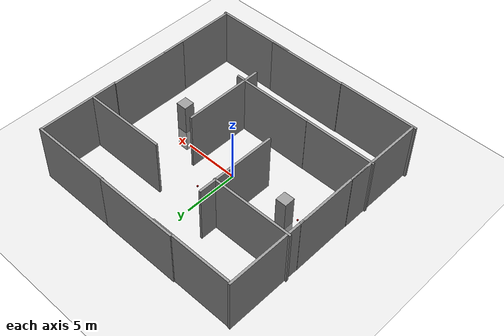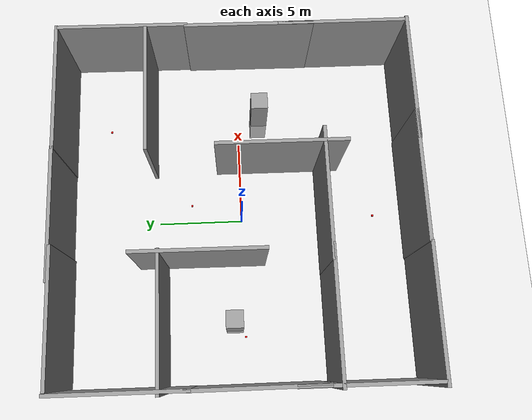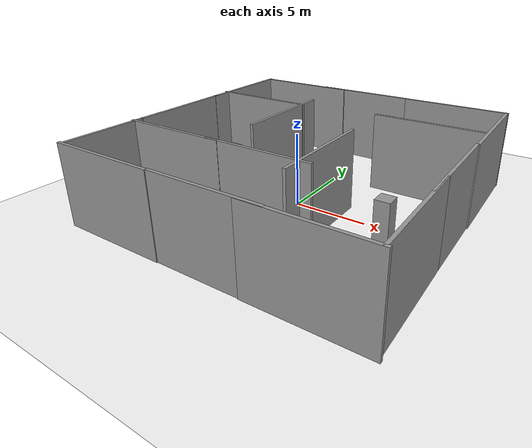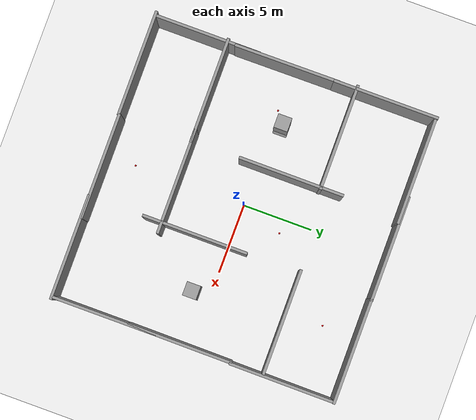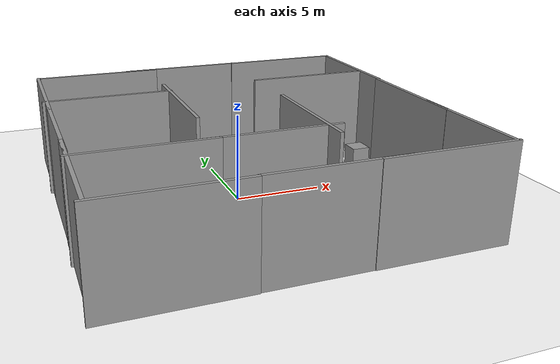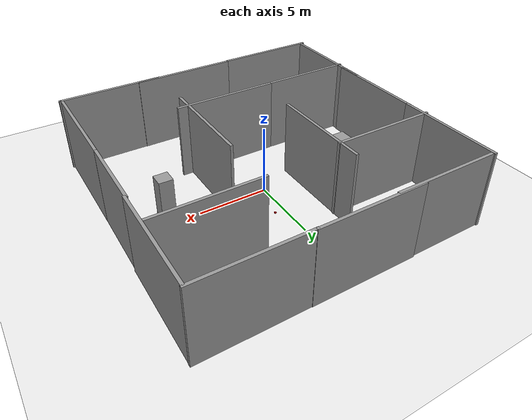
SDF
<?xml version="1.0" ?>
<sdf version="1.5">
  <world name="default">
    <!-- A global light source -->
    <include>
      <uri>model://sun</uri>
    </include>
    <!-- A ground plane -->
    <include>
      <uri>model://ground_plane</uri>
    </include>
    <include>
      <uri>model://asphalt_plane</uri>
    </include>
    <physics name='default_physics' default='0' type='ode'>
      <gravity>0 0 -9.8066</gravity>
      <ode>
        <solver>
          <type>quick</type>
          <iters>10</iters>
          <sor>1.3</sor>
          <use_dynamic_moi_rescaling>0</use_dynamic_moi_rescaling>
        </solver>
        <constraints>
          <cfm>0</cfm>
          <erp>0.2</erp>
          <contact_max_correcting_vel>100</contact_max_correcting_vel>
          <contact_surface_layer>0.001</contact_surface_layer>
        </constraints>
      </ode>
      <max_step_size>0.004</max_step_size>
      <real_time_factor>1</real_time_factor>
      <real_time_update_rate>250</real_time_update_rate>
      <magnetic_field>6.0e-6 2.3e-5 -4.2e-5</magnetic_field>
    </physics>
    <gui fullscreen='0'>
      <camera name='user_camera'>
        <pose frame=''>12.804 6.59761 20.6782 0 0.963643 -2.65182</pose>
        <view_controller>orbit</view_controller>
        <projection_type>perspective</projection_type>
      </camera>
    </gui>
    <model name="radiation_source_1">
      <pose>1.0 3.0 0.5 0 0 0</pose>
      <static>true</static>
      <link name="link_radiation_source">
        <pose>0 0 0 0 0 0</pose>
        <visual name="visual_radiation_source">
          <pose>0 0 0 0 0 0</pose>
          <geometry><box><size>0.1 0.1 0.1</size></box></geometry>
          <material><ambient>1 0 0 1</ambient><diffuse>1 0 0 1</diffuse></material>
        </visual>
        <sensor name="radiation_sources" type="radiation_source">
          <always_on>1</always_on>
          <update_rate>1.0</update_rate>
          <topic>source_1/gamma</topic>
          <plugin filename="libradiation_source_plugin.so" name="radiation_source_plugin"/>
        </sensor>
      </link>
    </model>
    <model name="radiation_source_2">
      <pose>6.0 8.0 0.5 0 0 0</pose>
      <static>true</static>
      <link name="link_radiation_source">
        <pose>0 0 0 0 0 0</pose>
        <visual name="visual_radiation_source">
          <pose>0 0 0 0 0 0</pose>
          <geometry><box><size>0.1 0.1 0.1</size></box></geometry>
          <material><ambient>1 0 0 1</ambient><diffuse>1 0 0 1</diffuse></material>
        </visual>
        <sensor name="radiation_sources" type="radiation_source">
          <always_on>1</always_on>
          <update_rate>1.0</update_rate>
          <topic>source_2/gamma</topic>
          <plugin filename="libradiation_source_plugin.so" name="radiation_source_plugin"/>
        </sensor>
      </link>
    </model>
    <model name="radiation_source_3">
      <pose>-7.0 0.0 0.5 0 0 0</pose>
      <static>true</static>
      <link name="link_radiation_source">
        <pose>0 0 0 0 0 0</pose>
        <visual name="visual_radiation_source">
          <pose>0 0 0 0 0 0</pose>
          <geometry><box><size>0.1 0.1 0.1</size></box></geometry>
          <material><ambient>1 0 0 1</ambient><diffuse>1 0 0 1</diffuse></material>
        </visual>
        <sensor name="radiation_sources" type="radiation_source">
          <always_on>1</always_on>
          <update_rate>1.0</update_rate>
          <topic>source_3/gamma</topic>
          <plugin filename="libradiation_source_plugin.so" name="radiation_source_plugin"/>
        </sensor>
      </link>
    </model>
    <model name="radiation_source_4">
      <pose>0.0 -8.0 0.5 0 0 0</pose>
      <static>true</static>
      <link name="link_radiation_source">
        <pose>0 0 0 0 0 0</pose>
        <visual name="visual_radiation_source">
          <pose>0 0 0 0 0 0</pose>
          <geometry><box><size>0.1 0.1 0.1</size></box></geometry>
          <material><ambient>1 0 0 1</ambient><diffuse>1 0 0 1</diffuse></material>
        </visual>
        <sensor name="radiation_sources" type="radiation_source">
          <always_on>1</always_on>
          <update_rate>1.0</update_rate>
          <topic>source_4/gamma</topic>
          <plugin filename="libradiation_source_plugin.so" name="radiation_source_plugin"/>
        </sensor>
      </link>
    </model>
    <model name='office1.world'>
    <link name='link_2'>
      <inertial>
        <mass>13.1278</mass>
        <inertia>
          <ixx>189.63</ixx>
          <ixy>0</ixy>
          <ixz>0</ixz>
          <iyy>189.63</iyy>
          <iyz>0</iyz>
          <izz>2.18797</izz>
        </inertia>
        <pose>0 0 0 0 -0 0</pose>
      </inertial>
      <pose>-6.1173 0.626969 0.350923 0 -0 0</pose>
      <self_collide>0</self_collide>
      <enable_wind>0</enable_wind>
      <kinematic>0</kinematic>
      <visual name='visual'>
        <pose>0 0 0 0 -0 0</pose>
        <geometry>
          <box>
            <size>1 1 5.0</size>
          </box>
        </geometry>
        <material>
          <lighting>1</lighting>
          <script>
            <uri>file://media/materials/scripts/gazebo.material</uri>
            <name>Gazebo/Grey</name>
          </script>
          <shader type='pixel'/>
        </material>
        <transparency>0</transparency>
        <cast_shadows>1</cast_shadows>
      </visual>
      <collision name='collision'>
        <laser_retro>0</laser_retro>
        <max_contacts>10</max_contacts>
        <pose>0 0 0 0 -0 0</pose>
        <geometry>
          <box>
            <size>1 1 5.0</size>
          </box>
        </geometry>
        <surface>
          <friction>
            <ode>
              <mu>1</mu>
              <mu2>1</mu2>
              <fdir1>0 0 0</fdir1>
              <slip1>0</slip1>
              <slip2>0</slip2>
            </ode>
            <torsional>
              <coefficient>1</coefficient>
              <patch_radius>0</patch_radius>
              <surface_radius>0</surface_radius>
              <use_patch_radius>1</use_patch_radius>
              <ode>
                <slip>0</slip>
              </ode>
            </torsional>
          </friction>
          <bounce>
            <restitution_coefficient>0</restitution_coefficient>
            <threshold>1e+06</threshold>
          </bounce>
        </surface>
      </collision>
    </link>
    <link name='link_3'>
      <inertial>
        <mass>13.3473</mass>
        <inertia>
          <ixx>199.264</ixx>
          <ixy>0</ixy>
          <ixz>0</ixz>
          <iyy>199.264</iyy>
          <iyz>0</iyz>
          <izz>2.22455</izz>
        </inertia>
        <pose>0 0 0 0 -0 0</pose>
      </inertial>
      <pose>6.82956 -1.30287 0.350923 0 -0 0</pose>
      <self_collide>0</self_collide>
      <enable_wind>0</enable_wind>
      <kinematic>0</kinematic>
      <visual name='visual'>
        <pose>0 0 0 0 -0 0</pose>
        <geometry>
          <box>
            <size>1 1 5.0</size>
          </box>
        </geometry>
        <material>
          <lighting>1</lighting>
          <script>
            <uri>file://media/materials/scripts/gazebo.material</uri>
            <name>Gazebo/Grey</name>
          </script>
          <shader type='pixel'/>
        </material>
        <transparency>0</transparency>
        <cast_shadows>1</cast_shadows>
      </visual>
      <collision name='collision'>
        <laser_retro>0</laser_retro>
        <max_contacts>10</max_contacts>
        <pose>0 0 0 0 -0 0</pose>
        <geometry>
          <box>
            <size>1 1 5.0</size>
          </box>
        </geometry>
        <surface>
          <friction>
            <ode>
              <mu>1</mu>
              <mu2>1</mu2>
              <fdir1>0 0 0</fdir1>
              <slip1>0</slip1>
              <slip2>0</slip2>
            </ode>
            <torsional>
              <coefficient>1</coefficient>
              <patch_radius>0</patch_radius>
              <surface_radius>0</surface_radius>
              <use_patch_radius>1</use_patch_radius>
              <ode>
                <slip>0</slip>
              </ode>
            </torsional>
          </friction>
          <bounce>
            <restitution_coefficient>0</restitution_coefficient>
            <threshold>1e+06</threshold>
          </bounce>
        </surface>
      </collision>
    </link>
     <static>0</static>
     <allow_auto_disable>1</allow_auto_disable>
    </model>
    <model name='grey_wall'>
      <static>1</static>
      <link name='link'>
        <pose>0 0 1.4 0 -0 0</pose>
        <collision name='collision'>
          <geometry>
            <box>
              <size>7.5 0.2 5.5</size>
            </box>
          </geometry>
          <max_contacts>10</max_contacts>
          <surface>
            <contact>
              <ode/>
            </contact>
            <bounce/>
            <friction>
              <torsional>
                <ode/>
              </torsional>
              <ode/>
            </friction>
          </surface>
        </collision>
        <visual name='visual'>
          <cast_shadows>0</cast_shadows>
          <geometry>
            <box>
              <size>7.5 0.2 5.5</size>
            </box>
          </geometry>
          <material>
            <script>
              <uri>model://grey_wall/materials/scripts</uri>
              <uri>model://grey_wall/materials/textures</uri>
              <name>vrc/grey_wall</name>
            </script>
          </material>
        </visual>
        <self_collide>0</self_collide>
        <enable_wind>0</enable_wind>
        <kinematic>0</kinematic>
      </link>
      <pose>-5.86547 10.2545 1.4 0 -0 0</pose>
    </model>
    <model name='grey_wall_0'>
      <static>1</static>
      <link name='link'>
        <pose>0 0 1.4 0 -0 0</pose>
        <collision name='collision'>
          <geometry>
            <box>
              <size>7.5 0.2 5.5</size>
            </box>
          </geometry>
          <max_contacts>10</max_contacts>
          <surface>
            <contact>
              <ode/>
            </contact>
            <bounce/>
            <friction>
              <torsional>
                <ode/>
              </torsional>
              <ode/>
            </friction>
          </surface>
        </collision>
        <visual name='visual'>
          <cast_shadows>0</cast_shadows>
          <geometry>
            <box>
              <size>7.5 0.2 5.5</size>
            </box>
          </geometry>
          <material>
            <script>
              <uri>model://grey_wall/materials/scripts</uri>
              <uri>model://grey_wall/materials/textures</uri>
              <name>vrc/grey_wall</name>
            </script>
          </material>
        </visual>
        <self_collide>0</self_collide>
        <enable_wind>0</enable_wind>
        <kinematic>0</kinematic>
      </link>
      <pose>-0.359473 10.3404 1.4 0 -0 0</pose>
    </model>
    <model name='grey_wall_1'>
      <static>1</static>
      <link name='link'>
        <pose>0 0 1.4 0 -0 0</pose>
        <collision name='collision'>
          <geometry>
            <box>
              <size>7.5 0.2 5.5</size>
            </box>
          </geometry>
          <max_contacts>10</max_contacts>
          <surface>
            <contact>
              <ode/>
            </contact>
            <bounce/>
            <friction>
              <torsional>
                <ode/>
              </torsional>
              <ode/>
            </friction>
          </surface>
        </collision>
        <visual name='visual'>
          <cast_shadows>0</cast_shadows>
          <geometry>
            <box>
              <size>7.5 0.2 5.5</size>
            </box>
          </geometry>
          <material>
            <script>
              <uri>model://grey_wall/materials/scripts</uri>
              <uri>model://grey_wall/materials/textures</uri>
              <name>vrc/grey_wall</name>
            </script>
          </material>
        </visual>
        <self_collide>0</self_collide>
        <enable_wind>0</enable_wind>
        <kinematic>0</kinematic>
      </link>
      <pose>6.95608 10.3134 1.4 0 -0 0</pose>
    </model>
    <model name='grey_wall_10'>
      <static>1</static>
      <link name='link'>
        <pose>0 0 1.4 0 -0 0</pose>
        <collision name='collision'>
          <geometry>
            <box>
              <size>7.5 0.2 5.5</size>
            </box>
          </geometry>
          <max_contacts>10</max_contacts>
          <surface>
            <contact>
              <ode/>
            </contact>
            <bounce/>
            <friction>
              <torsional>
                <ode/>
              </torsional>
              <ode/>
            </friction>
          </surface>
        </collision>
        <visual name='visual'>
          <cast_shadows>0</cast_shadows>
          <geometry>
            <box>
              <size>7.5 0.2 5.5</size>
            </box>
          </geometry>
          <material>
            <script>
              <uri>model://grey_wall/materials/scripts</uri>
              <uri>model://grey_wall/materials/textures</uri>
              <name>vrc/grey_wall</name>
            </script>
          </material>
        </visual>
        <self_collide>0</self_collide>
        <enable_wind>0</enable_wind>
        <kinematic>0</kinematic>
      </link>
      <pose>6.88242 -9.91203 1.4 0 -0 0</pose>
    </model>
    <model name='grey_wall_11'>
      <static>1</static>
      <link name='link'>
        <pose>0 0 1.4 0 -0 0</pose>
        <collision name='collision'>
          <geometry>
            <box>
              <size>7.5 0.2 5.5</size>
            </box>
          </geometry>
          <max_contacts>10</max_contacts>
          <surface>
            <contact>
              <ode/>
            </contact>
            <bounce/>
            <friction>
              <torsional>
                <ode/>
              </torsional>
              <ode/>
            </friction>
          </surface>
        </collision>
        <visual name='visual'>
          <cast_shadows>0</cast_shadows>
          <geometry>
            <box>
              <size>7.5 0.2 5.5</size>
            </box>
          </geometry>
          <material>
            <script>
              <uri>model://grey_wall/materials/scripts</uri>
              <uri>model://grey_wall/materials/textures</uri>
              <name>vrc/grey_wall</name>
            </script>
          </material>
        </visual>
        <self_collide>0</self_collide>
        <enable_wind>0</enable_wind>
        <kinematic>0</kinematic>
      </link>
      <pose>-6.2541 4.57267 1.4 0 -0 0</pose>
    </model>
    <model name='grey_wall_12'>
      <static>1</static>
      <link name='link'>
        <pose>0 0 1.4 0 -0 0</pose>
        <collision name='collision'>
          <geometry>
            <box>
              <size>7.5 0.2 5.5</size>
            </box>
          </geometry>
          <max_contacts>10</max_contacts>
          <surface>
            <contact>
              <ode/>
            </contact>
            <bounce/>
            <friction>
              <torsional>
                <ode/>
              </torsional>
              <ode/>
            </friction>
          </surface>
        </collision>
        <visual name='visual'>
          <cast_shadows>0</cast_shadows>
          <geometry>
            <box>
              <size>7.5 0.2 5.5</size>
            </box>
          </geometry>
          <material>
            <script>
              <uri>model://grey_wall/materials/scripts</uri>
              <uri>model://grey_wall/materials/textures</uri>
              <name>vrc/grey_wall</name>
            </script>
          </material>
        </visual>
        <self_collide>0</self_collide>
        <enable_wind>0</enable_wind>
        <kinematic>0</kinematic>
      </link>
      <pose>-6.24152 -4.72345 1.4 0 -0 0</pose>
    </model>
    <model name='grey_wall_13'>
      <static>1</static>
      <link name='link'>
        <pose>0 0 1.4 0 -0 0</pose>
        <collision name='collision'>
          <geometry>
            <box>
              <size>7.5 0.2 5.5</size>
            </box>
          </geometry>
          <max_contacts>10</max_contacts>
          <surface>
            <contact>
              <ode/>
            </contact>
            <bounce/>
            <friction>
              <torsional>
                <ode/>
              </torsional>
              <ode/>
            </friction>
          </surface>
        </collision>
        <visual name='visual'>
          <cast_shadows>0</cast_shadows>
          <geometry>
            <box>
              <size>7.5 0.2 5.5</size>
            </box>
          </geometry>
          <material>
            <script>
              <uri>model://grey_wall/materials/scripts</uri>
              <uri>model://grey_wall/materials/textures</uri>
              <name>vrc/grey_wall</name>
            </script>
          </material>
        </visual>
        <self_collide>0</self_collide>
        <enable_wind>0</enable_wind>
        <kinematic>0</kinematic>
      </link>
      <pose>-2.66308 2.44192 1.4 0 0 1.56711</pose>
    </model>
    <model name='grey_wall_14'>
      <static>1</static>
      <link name='link'>
        <pose>0 0 1.4 0 -0 0</pose>
        <collision name='collision'>
          <geometry>
            <box>
              <size>7.5 0.2 5.5</size>
            </box>
          </geometry>
          <max_contacts>10</max_contacts>
          <surface>
            <contact>
              <ode/>
            </contact>
            <bounce/>
            <friction>
              <torsional>
                <ode/>
              </torsional>
              <ode/>
            </friction>
          </surface>
        </collision>
        <visual name='visual'>
          <cast_shadows>0</cast_shadows>
          <geometry>
            <box>
              <size>7.5 0.2 5.5</size>
            </box>
          </geometry>
          <material>
            <script>
              <uri>model://grey_wall/materials/scripts</uri>
              <uri>model://grey_wall/materials/textures</uri>
              <name>vrc/grey_wall</name>
            </script>
          </material>
        </visual>
        <self_collide>0</self_collide>
        <enable_wind>0</enable_wind>
        <kinematic>0</kinematic>
      </link>
      <pose>0.27983 -4.70476 1.4 0 -0 0</pose>
    </model>
    <model name='grey_wall_15'>
      <static>1</static>
      <link name='link'>
        <pose>0 0 1.4 0 -0 0</pose>
        <collision name='collision'>
          <geometry>
            <box>
              <size>7.5 0.2 5.5</size>
            </box>
          </geometry>
          <max_contacts>10</max_contacts>
          <surface>
            <contact>
              <ode/>
            </contact>
            <bounce/>
            <friction>
              <torsional>
                <ode/>
              </torsional>
              <ode/>
            </friction>
          </surface>
        </collision>
        <visual name='visual'>
          <cast_shadows>0</cast_shadows>
          <geometry>
            <box>
              <size>7.5 0.2 5.5</size>
            </box>
          </geometry>
          <material>
            <script>
              <uri>model://grey_wall/materials/scripts</uri>
              <uri>model://grey_wall/materials/textures</uri>
              <name>vrc/grey_wall</name>
            </script>
          </material>
        </visual>
        <self_collide>0</self_collide>
        <enable_wind>0</enable_wind>
        <kinematic>0</kinematic>
      </link>
      <pose>6.73809 5.20823 1.4 0 -0 0</pose>
    </model>
    <model name='grey_wall_16'>
      <static>1</static>
      <link name='link'>
        <pose>0 0 1.4 0 -0 0</pose>
        <collision name='collision'>
          <geometry>
            <box>
              <size>7.5 0.2 5.5</size>
            </box>
          </geometry>
          <max_contacts>10</max_contacts>
          <surface>
            <contact>
              <ode/>
            </contact>
            <bounce/>
            <friction>
              <torsional>
                <ode/>
              </torsional>
              <ode/>
            </friction>
          </surface>
        </collision>
        <visual name='visual'>
          <cast_shadows>0</cast_shadows>
          <geometry>
            <box>
              <size>7.5 0.2 5.5</size>
            </box>
          </geometry>
          <material>
            <script>
              <uri>model://grey_wall/materials/scripts</uri>
              <uri>model://grey_wall/materials/textures</uri>
              <name>vrc/grey_wall</name>
            </script>
          </material>
        </visual>
        <self_collide>0</self_collide>
        <enable_wind>0</enable_wind>
        <kinematic>0</kinematic>
      </link>
      <pose>3.21535 -2.32329 1.4 0 0 -1.57341</pose>
    </model>
    <model name='grey_wall_2'>
      <static>1</static>
      <link name='link'>
        <pose>0 0 1.4 0 -0 0</pose>
        <collision name='collision'>
          <geometry>
            <box>
              <size>7.5 0.2 5.5</size>
            </box>
          </geometry>
          <max_contacts>10</max_contacts>
          <surface>
            <contact>
              <ode/>
            </contact>
            <bounce/>
            <friction>
              <torsional>
                <ode/>
              </torsional>
              <ode/>
            </friction>
          </surface>
        </collision>
        <visual name='visual'>
          <cast_shadows>0</cast_shadows>
          <geometry>
            <box>
              <size>7.5 0.2 5.5</size>
            </box>
          </geometry>
          <material>
            <script>
              <uri>model://grey_wall/materials/scripts</uri>
              <uri>model://grey_wall/materials/textures</uri>
              <name>vrc/grey_wall</name>
            </script>
          </material>
        </visual>
        <self_collide>0</self_collide>
        <enable_wind>0</enable_wind>
        <kinematic>0</kinematic>
      </link>
      <pose>10.5617 6.53837 1.4 0 -0 -1.57719</pose>
    </model>
    <model name='grey_wall_3'>
      <static>1</static>
      <link name='link'>
        <pose>0 0 1.4 0 -0 0</pose>
        <collision name='collision'>
          <geometry>
            <box>
              <size>7.5 0.2 5.5</size>
            </box>
          </geometry>
          <max_contacts>10</max_contacts>
          <surface>
            <contact>
              <ode/>
            </contact>
            <bounce/>
            <friction>
              <torsional>
                <ode/>
              </torsional>
              <ode/>
            </friction>
          </surface>
        </collision>
        <visual name='visual'>
          <cast_shadows>0</cast_shadows>
          <geometry>
            <box>
              <size>7.5 0.2 5.5</size>
            </box>
          </geometry>
          <material>
            <script>
              <uri>model://grey_wall/materials/scripts</uri>
              <uri>model://grey_wall/materials/textures</uri>
              <name>vrc/grey_wall</name>
            </script>
          </material>
        </visual>
        <self_collide>0</self_collide>
        <enable_wind>0</enable_wind>
        <kinematic>0</kinematic>
      </link>
      <pose>10.4415 -0.768875 1.4 0 -0 1.56273</pose>
    </model>
    <model name='grey_wall_4'>
      <static>1</static>
      <link name='link'>
        <pose>0 0 1.4 0 -0 0</pose>
        <collision name='collision'>
          <geometry>
            <box>
              <size>7.5 0.2 5.5</size>
            </box>
          </geometry>
          <max_contacts>10</max_contacts>
          <surface>
            <contact>
              <ode/>
            </contact>
            <bounce/>
            <friction>
              <torsional>
                <ode/>
              </torsional>
              <ode/>
            </friction>
          </surface>
        </collision>
        <visual name='visual'>
          <cast_shadows>0</cast_shadows>
          <geometry>
            <box>
              <size>7.5 0.2 5.5</size>
            </box>
          </geometry>
          <material>
            <script>
              <uri>model://grey_wall/materials/scripts</uri>
              <uri>model://grey_wall/materials/textures</uri>
              <name>vrc/grey_wall</name>
            </script>
          </material>
        </visual>
        <self_collide>0</self_collide>
        <enable_wind>0</enable_wind>
        <kinematic>0</kinematic>
      </link>
      <pose>10.4276 -6.20286 1.4 0 0 1.57014</pose>
    </model>
    <model name='grey_wall_5'>
      <static>1</static>
      <link name='link'>
        <pose>0 0 1.4 0 -0 0</pose>
        <collision name='collision'>
          <geometry>
            <box>
              <size>7.5 0.2 5.5</size>
            </box>
          </geometry>
          <max_contacts>10</max_contacts>
          <surface>
            <contact>
              <ode/>
            </contact>
            <bounce/>
            <friction>
              <torsional>
                <ode/>
              </torsional>
              <ode/>
            </friction>
          </surface>
        </collision>
        <visual name='visual'>
          <cast_shadows>0</cast_shadows>
          <geometry>
            <box>
              <size>7.5 0.2 5.5</size>
            </box>
          </geometry>
          <material>
            <script>
              <uri>model://grey_wall/materials/scripts</uri>
              <uri>model://grey_wall/materials/textures</uri>
              <name>vrc/grey_wall</name>
            </script>
          </material>
        </visual>
        <self_collide>0</self_collide>
        <enable_wind>0</enable_wind>
        <kinematic>0</kinematic>
      </link>
      <pose>-9.74149 6.66516 1.4 0 -0 1.57011</pose>
    </model>
    <model name='grey_wall_6'>
      <static>1</static>
      <link name='link'>
        <pose>0 0 1.4 0 -0 0</pose>
        <collision name='collision'>
          <geometry>
            <box>
              <size>7.5 0.2 5.5</size>
            </box>
          </geometry>
          <max_contacts>10</max_contacts>
          <surface>
            <contact>
              <ode/>
            </contact>
            <bounce/>
            <friction>
              <torsional>
                <ode/>
              </torsional>
              <ode/>
            </friction>
          </surface>
        </collision>
        <visual name='visual'>
          <cast_shadows>0</cast_shadows>
          <geometry>
            <box>
              <size>7.5 0.2 5.5</size>
            </box>
          </geometry>
          <material>
            <script>
              <uri>model://grey_wall/materials/scripts</uri>
              <uri>model://grey_wall/materials/textures</uri>
              <name>vrc/grey_wall</name>
            </script>
          </material>
        </visual>
        <self_collide>0</self_collide>
        <enable_wind>0</enable_wind>
        <kinematic>0</kinematic>
      </link>
      <pose>-9.74095 -0.423524 1.4 0 -0 1.57499</pose>
    </model>
    <model name='grey_wall_7'>
      <static>1</static>
      <link name='link'>
        <pose>0 0 1.4 0 -0 0</pose>
        <collision name='collision'>
          <geometry>
            <box>
              <size>7.5 0.2 5.5</size>
            </box>
          </geometry>
          <max_contacts>10</max_contacts>
          <surface>
            <contact>
              <ode/>
            </contact>
            <bounce/>
            <friction>
              <torsional>
                <ode/>
              </torsional>
              <ode/>
            </friction>
          </surface>
        </collision>
        <visual name='visual'>
          <cast_shadows>0</cast_shadows>
          <geometry>
            <box>
              <size>7.5 0.2 5.5</size>
            </box>
          </geometry>
          <material>
            <script>
              <uri>model://grey_wall/materials/scripts</uri>
              <uri>model://grey_wall/materials/textures</uri>
              <name>vrc/grey_wall</name>
            </script>
          </material>
        </visual>
        <self_collide>0</self_collide>
        <enable_wind>0</enable_wind>
        <kinematic>0</kinematic>
      </link>
      <pose>-9.76328 -6.13102 1.4 0 -0 -1.57227</pose>
    </model>
    <model name='grey_wall_8'>
      <static>1</static>
      <link name='link'>
        <pose>0 0 1.4 0 -0 0</pose>
        <collision name='collision'>
          <geometry>
            <box>
              <size>7.5 0.2 5.5</size>
            </box>
          </geometry>
          <max_contacts>10</max_contacts>
          <surface>
            <contact>
              <ode/>
            </contact>
            <bounce/>
            <friction>
              <torsional>
                <ode/>
              </torsional>
              <ode/>
            </friction>
          </surface>
        </collision>
        <visual name='visual'>
          <cast_shadows>0</cast_shadows>
          <geometry>
            <box>
              <size>7.5 0.2 5.5</size>
            </box>
          </geometry>
          <material>
            <script>
              <uri>model://grey_wall/materials/scripts</uri>
              <uri>model://grey_wall/materials/textures</uri>
              <name>vrc/grey_wall</name>
            </script>
          </material>
        </visual>
        <self_collide>0</self_collide>
        <enable_wind>0</enable_wind>
        <kinematic>0</kinematic>
      </link>
      <pose>-6.31444 -9.92451 1.4 0 -0 0</pose>
    </model>
    <model name='grey_wall_9'>
      <static>1</static>
      <link name='link'>
        <pose>0 0 1.4 0 -0 0</pose>
        <collision name='collision'>
          <geometry>
            <box>
              <size>7.5 0.2 5.5</size>
            </box>
          </geometry>
          <max_contacts>10</max_contacts>
          <surface>
            <contact>
              <ode/>
            </contact>
            <bounce/>
            <friction>
              <torsional>
                <ode/>
              </torsional>
              <ode/>
            </friction>
          </surface>
        </collision>
        <visual name='visual'>
          <cast_shadows>0</cast_shadows>
          <geometry>
            <box>
              <size>7.5 0.2 5.5</size>
            </box>
          </geometry>
          <material>
            <script>
              <uri>model://grey_wall/materials/scripts</uri>
              <uri>model://grey_wall/materials/textures</uri>
              <name>vrc/grey_wall</name>
            </script>
          </material>
        </visual>
        <self_collide>0</self_collide>
        <enable_wind>0</enable_wind>
        <kinematic>0</kinematic>
      </link>
      <pose>1.07683 -9.87408 1.4 0 -0 0</pose>
    </model>

  </world>
</sdf>
